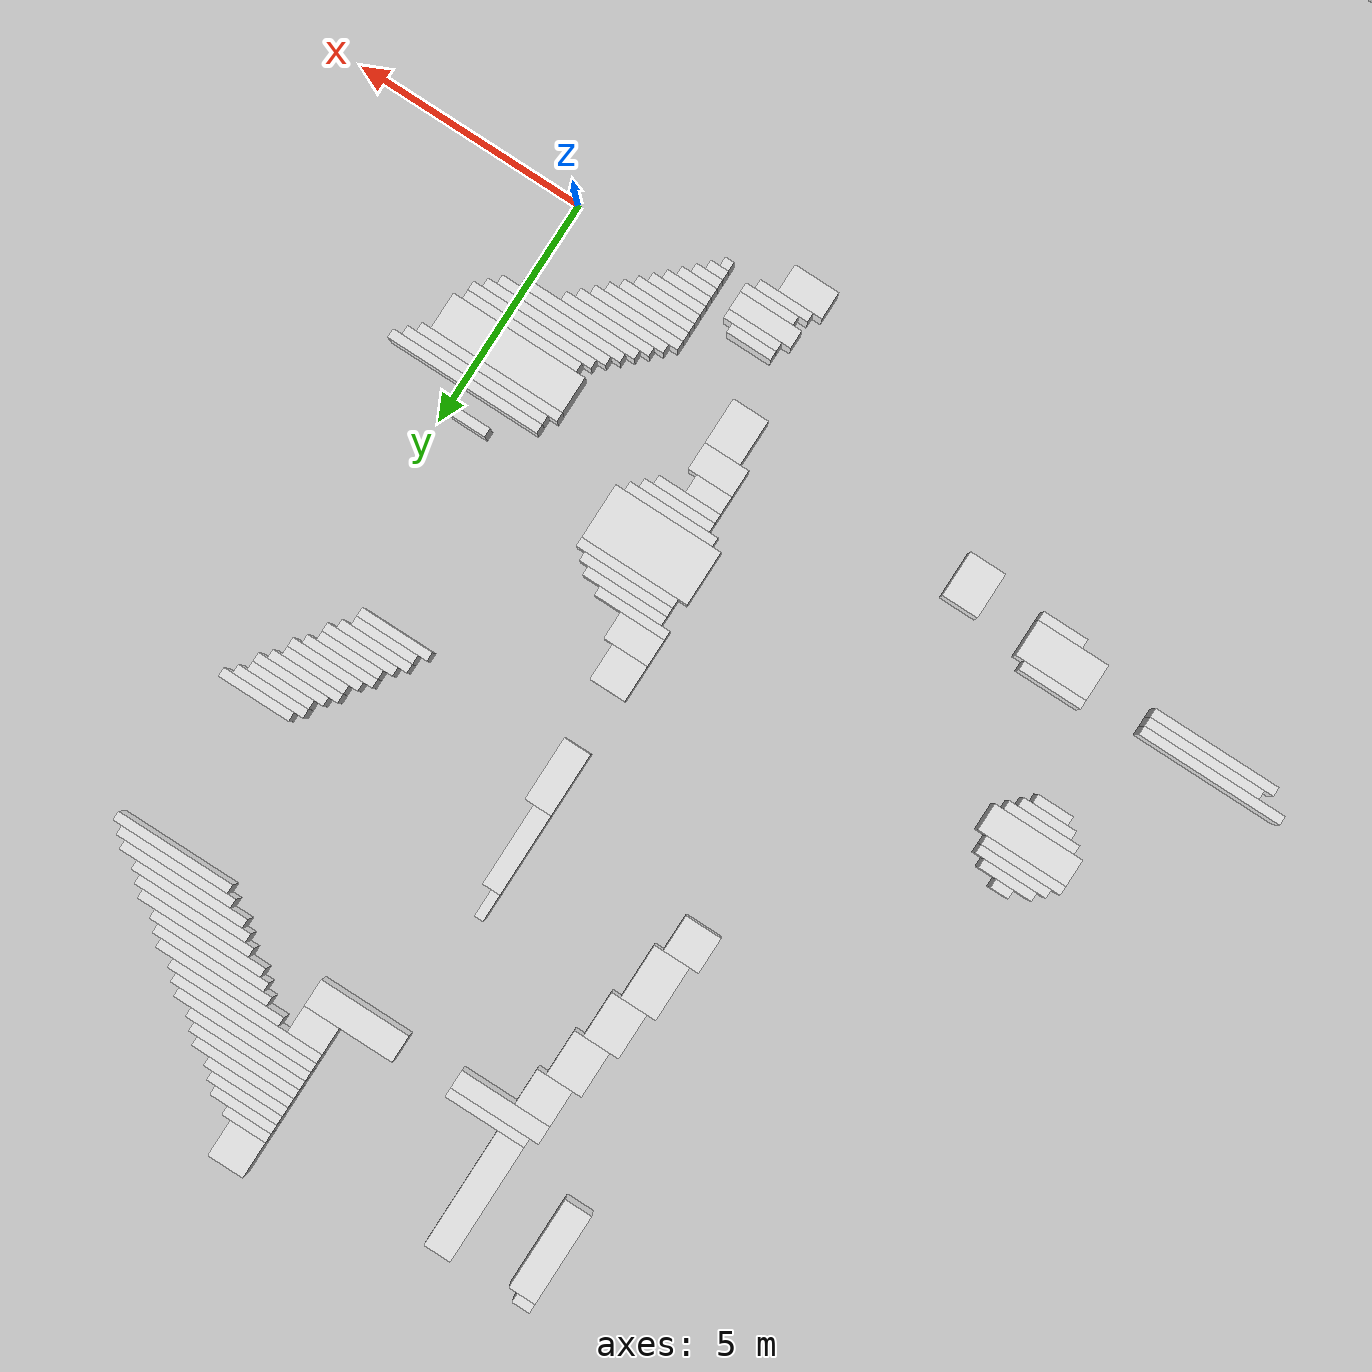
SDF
<sdf version="1.7">
 <world name="default">
  <model name="ground_plane">
   <static>1</static>
   <link name="link">
    <collision name="collision">
     <geometry><plane><normal>0 0 1</normal><size>120 120</size></plane></geometry>
    </collision>
    <visual name="visual">
     <geometry><plane><normal>0 0 1</normal><size>120 120</size></plane></geometry>
     <material>
      <script><uri>file://media/materials/scripts/gazebo.material</uri><name>Gazebo/Grey</name></script>
     </material>
    </visual>
   </link>
  </model>
  <model name="random_complex_01_model">
   <static>1</static>
   <link name="obs_1026">
    <pose>-4.4000 18.8000 0.8000 0 0 0</pose>
    <collision name="obs_1026_col"><geometry><box><size>0.8000 0.8000 1.6000</size></box></geometry></collision>
    <visual name="obs_1026_vis">
     <geometry><box><size>0.8000 0.8000 1.6000</size></box></geometry>
     <material>
      <script><uri>file://media/materials/scripts/gazebo.material</uri><name>Gazebo/White</name></script>
     </material>
    </visual>
   </link>
   <link name="obs_1040">
    <pose>-10.6000 18.3000 0.8000 0 0 0</pose>
    <collision name="obs_1040_col"><geometry><box><size>0.4000 0.2000 1.6000</size></box></geometry></collision>
    <visual name="obs_1040_vis">
     <geometry><box><size>0.4000 0.2000 1.6000</size></box></geometry>
     <material>
      <script><uri>file://media/materials/scripts/gazebo.material</uri><name>Gazebo/White</name></script>
     </material>
    </visual>
   </link>
   <link name="obs_1041">
    <pose>-4.3000 18.3000 0.8000 0 0 0</pose>
    <collision name="obs_1041_col"><geometry><box><size>1.0000 0.2000 1.6000</size></box></geometry></collision>
    <visual name="obs_1041_vis">
     <geometry><box><size>1.0000 0.2000 1.6000</size></box></geometry>
     <material>
      <script><uri>file://media/materials/scripts/gazebo.material</uri><name>Gazebo/White</name></script>
     </material>
    </visual>
   </link>
   <link name="obs_1050">
    <pose>-4.1000 18.1000 0.8000 0 0 0</pose>
    <collision name="obs_1050_col"><geometry><box><size>1.4000 0.2000 1.6000</size></box></geometry></collision>
    <visual name="obs_1050_vis">
     <geometry><box><size>1.4000 0.2000 1.6000</size></box></geometry>
     <material>
      <script><uri>file://media/materials/scripts/gazebo.material</uri><name>Gazebo/White</name></script>
     </material>
    </visual>
   </link>
   <link name="obs_1063">
    <pose>-4.0000 17.9000 0.8000 0 0 0</pose>
    <collision name="obs_1063_col"><geometry><box><size>1.6000 0.2000 1.6000</size></box></geometry></collision>
    <visual name="obs_1063_vis">
     <geometry><box><size>1.6000 0.2000 1.6000</size></box></geometry>
     <material>
      <script><uri>file://media/materials/scripts/gazebo.material</uri><name>Gazebo/White</name></script>
     </material>
    </visual>
   </link>
   <link name="obs_1069">
    <pose>-3.9000 17.7000 0.8000 0 0 0</pose>
    <collision name="obs_1069_col"><geometry><box><size>1.8000 0.2000 1.6000</size></box></geometry></collision>
    <visual name="obs_1069_vis">
     <geometry><box><size>1.8000 0.2000 1.6000</size></box></geometry>
     <material>
      <script><uri>file://media/materials/scripts/gazebo.material</uri><name>Gazebo/White</name></script>
     </material>
    </visual>
   </link>
   <link name="obs_1077">
    <pose>-3.7000 17.5000 0.8000 0 0 0</pose>
    <collision name="obs_1077_col"><geometry><box><size>2.2000 0.2000 1.6000</size></box></geometry></collision>
    <visual name="obs_1077_vis">
     <geometry><box><size>2.2000 0.2000 1.6000</size></box></geometry>
     <material>
      <script><uri>file://media/materials/scripts/gazebo.material</uri><name>Gazebo/White</name></script>
     </material>
    </visual>
   </link>
   <link name="obs_1084">
    <pose>-3.6000 17.3000 0.8000 0 0 0</pose>
    <collision name="obs_1084_col"><geometry><box><size>2.4000 0.2000 1.6000</size></box></geometry></collision>
    <visual name="obs_1084_vis">
     <geometry><box><size>2.4000 0.2000 1.6000</size></box></geometry>
     <material>
      <script><uri>file://media/materials/scripts/gazebo.material</uri><name>Gazebo/White</name></script>
     </material>
    </visual>
   </link>
   <link name="obs_1091">
    <pose>-3.5000 17.1000 0.8000 0 0 0</pose>
    <collision name="obs_1091_col"><geometry><box><size>2.6000 0.2000 1.6000</size></box></geometry></collision>
    <visual name="obs_1091_vis">
     <geometry><box><size>2.6000 0.2000 1.6000</size></box></geometry>
     <material>
      <script><uri>file://media/materials/scripts/gazebo.material</uri><name>Gazebo/White</name></script>
     </material>
    </visual>
   </link>
   <link name="obs_1099">
    <pose>-3.3000 16.9000 0.8000 0 0 0</pose>
    <collision name="obs_1099_col"><geometry><box><size>3.0000 0.2000 1.6000</size></box></geometry></collision>
    <visual name="obs_1099_vis">
     <geometry><box><size>3.0000 0.2000 1.6000</size></box></geometry>
     <material>
      <script><uri>file://media/materials/scripts/gazebo.material</uri><name>Gazebo/White</name></script>
     </material>
    </visual>
   </link>
   <link name="obs_1109">
    <pose>-3.2000 16.7000 0.8000 0 0 0</pose>
    <collision name="obs_1109_col"><geometry><box><size>3.2000 0.2000 1.6000</size></box></geometry></collision>
    <visual name="obs_1109_vis">
     <geometry><box><size>3.2000 0.2000 1.6000</size></box></geometry>
     <material>
      <script><uri>file://media/materials/scripts/gazebo.material</uri><name>Gazebo/White</name></script>
     </material>
    </visual>
   </link>
   <link name="obs_1116">
    <pose>-3.1000 16.5000 0.8000 0 0 0</pose>
    <collision name="obs_1116_col"><geometry><box><size>3.4000 0.2000 1.6000</size></box></geometry></collision>
    <visual name="obs_1116_vis">
     <geometry><box><size>3.4000 0.2000 1.6000</size></box></geometry>
     <material>
      <script><uri>file://media/materials/scripts/gazebo.material</uri><name>Gazebo/White</name></script>
     </material>
    </visual>
   </link>
   <link name="obs_1122">
    <pose>-10.5000 17.2000 0.8000 0 0 0</pose>
    <collision name="obs_1122_col"><geometry><box><size>0.6000 2.0000 1.6000</size></box></geometry></collision>
    <visual name="obs_1122_vis">
     <geometry><box><size>0.6000 2.0000 1.6000</size></box></geometry>
     <material>
      <script><uri>file://media/materials/scripts/gazebo.material</uri><name>Gazebo/White</name></script>
     </material>
    </visual>
   </link>
   <link name="obs_1124">
    <pose>-2.4000 16.3000 0.8000 0 0 0</pose>
    <collision name="obs_1124_col"><geometry><box><size>2.8000 0.2000 1.6000</size></box></geometry></collision>
    <visual name="obs_1124_vis">
     <geometry><box><size>2.8000 0.2000 1.6000</size></box></geometry>
     <material>
      <script><uri>file://media/materials/scripts/gazebo.material</uri><name>Gazebo/White</name></script>
     </material>
    </visual>
   </link>
   <link name="obs_1134">
    <pose>-2.1000 16.1000 0.8000 0 0 0</pose>
    <collision name="obs_1134_col"><geometry><box><size>2.6000 0.2000 1.6000</size></box></geometry></collision>
    <visual name="obs_1134_vis">
     <geometry><box><size>2.6000 0.2000 1.6000</size></box></geometry>
     <material>
      <script><uri>file://media/materials/scripts/gazebo.material</uri><name>Gazebo/White</name></script>
     </material>
    </visual>
   </link>
   <link name="obs_1140">
    <pose>-8.7000 17.1000 0.8000 0 0 0</pose>
    <collision name="obs_1140_col"><geometry><box><size>0.6000 2.6000 1.6000</size></box></geometry></collision>
    <visual name="obs_1140_vis">
     <geometry><box><size>0.6000 2.6000 1.6000</size></box></geometry>
     <material>
      <script><uri>file://media/materials/scripts/gazebo.material</uri><name>Gazebo/White</name></script>
     </material>
    </visual>
   </link>
   <link name="obs_1141">
    <pose>-4.4000 16.1000 0.8000 0 0 0</pose>
    <collision name="obs_1141_col"><geometry><box><size>0.8000 0.6000 1.6000</size></box></geometry></collision>
    <visual name="obs_1141_vis">
     <geometry><box><size>0.8000 0.6000 1.6000</size></box></geometry>
     <material>
      <script><uri>file://media/materials/scripts/gazebo.material</uri><name>Gazebo/White</name></script>
     </material>
    </visual>
   </link>
   <link name="obs_1144">
    <pose>-1.9000 15.9000 0.8000 0 0 0</pose>
    <collision name="obs_1144_col"><geometry><box><size>2.6000 0.2000 1.6000</size></box></geometry></collision>
    <visual name="obs_1144_vis">
     <geometry><box><size>2.6000 0.2000 1.6000</size></box></geometry>
     <material>
      <script><uri>file://media/materials/scripts/gazebo.material</uri><name>Gazebo/White</name></script>
     </material>
    </visual>
   </link>
   <link name="obs_1153">
    <pose>-8.1000 15.7000 0.8000 0 0 0</pose>
    <collision name="obs_1153_col"><geometry><box><size>1.8000 0.2000 1.6000</size></box></geometry></collision>
    <visual name="obs_1153_vis">
     <geometry><box><size>1.8000 0.2000 1.6000</size></box></geometry>
     <material>
      <script><uri>file://media/materials/scripts/gazebo.material</uri><name>Gazebo/White</name></script>
     </material>
    </visual>
   </link>
   <link name="obs_1154">
    <pose>-1.6000 15.7000 0.8000 0 0 0</pose>
    <collision name="obs_1154_col"><geometry><box><size>2.8000 0.2000 1.6000</size></box></geometry></collision>
    <visual name="obs_1154_vis">
     <geometry><box><size>2.8000 0.2000 1.6000</size></box></geometry>
     <material>
      <script><uri>file://media/materials/scripts/gazebo.material</uri><name>Gazebo/White</name></script>
     </material>
    </visual>
   </link>
   <link name="obs_1161">
    <pose>-1.3000 15.5000 0.8000 0 0 0</pose>
    <collision name="obs_1161_col"><geometry><box><size>2.6000 0.2000 1.6000</size></box></geometry></collision>
    <visual name="obs_1161_vis">
     <geometry><box><size>2.6000 0.2000 1.6000</size></box></geometry>
     <material>
      <script><uri>file://media/materials/scripts/gazebo.material</uri><name>Gazebo/White</name></script>
     </material>
    </visual>
   </link>
   <link name="obs_1167">
    <pose>-5.0000 15.5000 0.8000 0 0 0</pose>
    <collision name="obs_1167_col"><geometry><box><size>2.0000 0.6000 1.6000</size></box></geometry></collision>
    <visual name="obs_1167_vis">
     <geometry><box><size>2.0000 0.6000 1.6000</size></box></geometry>
     <material>
      <script><uri>file://media/materials/scripts/gazebo.material</uri><name>Gazebo/White</name></script>
     </material>
    </visual>
   </link>
   <link name="obs_1169">
    <pose>-8.2000 15.4000 0.8000 0 0 0</pose>
    <collision name="obs_1169_col"><geometry><box><size>2.0000 0.4000 1.6000</size></box></geometry></collision>
    <visual name="obs_1169_vis">
     <geometry><box><size>2.0000 0.4000 1.6000</size></box></geometry>
     <material>
      <script><uri>file://media/materials/scripts/gazebo.material</uri><name>Gazebo/White</name></script>
     </material>
    </visual>
   </link>
   <link name="obs_1172">
    <pose>-1.1000 15.3000 0.8000 0 0 0</pose>
    <collision name="obs_1172_col"><geometry><box><size>2.6000 0.2000 1.6000</size></box></geometry></collision>
    <visual name="obs_1172_vis">
     <geometry><box><size>2.6000 0.2000 1.6000</size></box></geometry>
     <material>
      <script><uri>file://media/materials/scripts/gazebo.material</uri><name>Gazebo/White</name></script>
     </material>
    </visual>
   </link>
   <link name="obs_1179">
    <pose>-0.8000 15.1000 0.8000 0 0 0</pose>
    <collision name="obs_1179_col"><geometry><box><size>2.8000 0.2000 1.6000</size></box></geometry></collision>
    <visual name="obs_1179_vis">
     <geometry><box><size>2.8000 0.2000 1.6000</size></box></geometry>
     <material>
      <script><uri>file://media/materials/scripts/gazebo.material</uri><name>Gazebo/White</name></script>
     </material>
    </visual>
   </link>
   <link name="obs_1187">
    <pose>-0.5000 14.9000 0.8000 0 0 0</pose>
    <collision name="obs_1187_col"><geometry><box><size>2.6000 0.2000 1.6000</size></box></geometry></collision>
    <visual name="obs_1187_vis">
     <geometry><box><size>2.6000 0.2000 1.6000</size></box></geometry>
     <material>
      <script><uri>file://media/materials/scripts/gazebo.material</uri><name>Gazebo/White</name></script>
     </material>
    </visual>
   </link>
   <link name="obs_1194">
    <pose>-0.3000 14.7000 0.8000 0 0 0</pose>
    <collision name="obs_1194_col"><geometry><box><size>2.6000 0.2000 1.6000</size></box></geometry></collision>
    <visual name="obs_1194_vis">
     <geometry><box><size>2.6000 0.2000 1.6000</size></box></geometry>
     <material>
      <script><uri>file://media/materials/scripts/gazebo.material</uri><name>Gazebo/White</name></script>
     </material>
    </visual>
   </link>
   <link name="obs_1198">
    <pose>-8.8000 14.8000 0.8000 0 0 0</pose>
    <collision name="obs_1198_col"><geometry><box><size>0.8000 0.8000 1.6000</size></box></geometry></collision>
    <visual name="obs_1198_vis">
     <geometry><box><size>0.8000 0.8000 1.6000</size></box></geometry>
     <material>
      <script><uri>file://media/materials/scripts/gazebo.material</uri><name>Gazebo/White</name></script>
     </material>
    </visual>
   </link>
   <link name="obs_1234">
    <pose>-9.0000 13.9000 0.8000 0 0 0</pose>
    <collision name="obs_1234_col"><geometry><box><size>0.8000 1.0000 1.6000</size></box></geometry></collision>
    <visual name="obs_1234_vis">
     <geometry><box><size>0.8000 1.0000 1.6000</size></box></geometry>
     <material>
      <script><uri>file://media/materials/scripts/gazebo.material</uri><name>Gazebo/White</name></script>
     </material>
    </visual>
   </link>
   <link name="obs_1279">
    <pose>-9.2000 12.9000 0.8000 0 0 0</pose>
    <collision name="obs_1279_col"><geometry><box><size>0.8000 1.0000 1.6000</size></box></geometry></collision>
    <visual name="obs_1279_vis">
     <geometry><box><size>0.8000 1.0000 1.6000</size></box></geometry>
     <material>
      <script><uri>file://media/materials/scripts/gazebo.material</uri><name>Gazebo/White</name></script>
     </material>
    </visual>
   </link>
   <link name="obs_1298">
    <pose>-5.9000 12.3000 0.8000 0 0 0</pose>
    <collision name="obs_1298_col"><geometry><box><size>0.2000 0.6000 1.6000</size></box></geometry></collision>
    <visual name="obs_1298_vis">
     <geometry><box><size>0.2000 0.6000 1.6000</size></box></geometry>
     <material>
      <script><uri>file://media/materials/scripts/gazebo.material</uri><name>Gazebo/White</name></script>
     </material>
    </visual>
   </link>
   <link name="obs_1327">
    <pose>-9.4000 11.8000 0.8000 0 0 0</pose>
    <collision name="obs_1327_col"><geometry><box><size>0.8000 1.2000 1.6000</size></box></geometry></collision>
    <visual name="obs_1327_vis">
     <geometry><box><size>0.8000 1.2000 1.6000</size></box></geometry>
     <material>
      <script><uri>file://media/materials/scripts/gazebo.material</uri><name>Gazebo/White</name></script>
     </material>
    </visual>
   </link>
   <link name="obs_1328">
    <pose>0.0000 11.3000 0.8000 0 0 0</pose>
    <collision name="obs_1328_col"><geometry><box><size>1.6000 0.2000 1.6000</size></box></geometry></collision>
    <visual name="obs_1328_vis">
     <geometry><box><size>1.6000 0.2000 1.6000</size></box></geometry>
     <material>
      <script><uri>file://media/materials/scripts/gazebo.material</uri><name>Gazebo/White</name></script>
     </material>
    </visual>
   </link>
   <link name="obs_1336">
    <pose>-0.2000 11.1000 0.8000 0 0 0</pose>
    <collision name="obs_1336_col"><geometry><box><size>1.6000 0.2000 1.6000</size></box></geometry></collision>
    <visual name="obs_1336_vis">
     <geometry><box><size>1.6000 0.2000 1.6000</size></box></geometry>
     <material>
      <script><uri>file://media/materials/scripts/gazebo.material</uri><name>Gazebo/White</name></script>
     </material>
    </visual>
   </link>
   <link name="obs_1342">
    <pose>-0.3000 10.9000 0.8000 0 0 0</pose>
    <collision name="obs_1342_col"><geometry><box><size>1.4000 0.2000 1.6000</size></box></geometry></collision>
    <visual name="obs_1342_vis">
     <geometry><box><size>1.4000 0.2000 1.6000</size></box></geometry>
     <material>
      <script><uri>file://media/materials/scripts/gazebo.material</uri><name>Gazebo/White</name></script>
     </material>
    </visual>
   </link>
   <link name="obs_1348">
    <pose>-0.4000 10.7000 0.8000 0 0 0</pose>
    <collision name="obs_1348_col"><geometry><box><size>1.6000 0.2000 1.6000</size></box></geometry></collision>
    <visual name="obs_1348_vis">
     <geometry><box><size>1.6000 0.2000 1.6000</size></box></geometry>
     <material>
      <script><uri>file://media/materials/scripts/gazebo.material</uri><name>Gazebo/White</name></script>
     </material>
    </visual>
   </link>
   <link name="obs_1351">
    <pose>-9.6000 10.8000 0.8000 0 0 0</pose>
    <collision name="obs_1351_col"><geometry><box><size>0.8000 0.8000 1.6000</size></box></geometry></collision>
    <visual name="obs_1351_vis">
     <geometry><box><size>0.8000 0.8000 1.6000</size></box></geometry>
     <material>
      <script><uri>file://media/materials/scripts/gazebo.material</uri><name>Gazebo/White</name></script>
     </material>
    </visual>
   </link>
   <link name="obs_1353">
    <pose>-0.6000 10.5000 0.8000 0 0 0</pose>
    <collision name="obs_1353_col"><geometry><box><size>1.6000 0.2000 1.6000</size></box></geometry></collision>
    <visual name="obs_1353_vis">
     <geometry><box><size>1.6000 0.2000 1.6000</size></box></geometry>
     <material>
      <script><uri>file://media/materials/scripts/gazebo.material</uri><name>Gazebo/White</name></script>
     </material>
    </visual>
   </link>
   <link name="obs_1355">
    <pose>-5.8000 11.1000 0.8000 0 0 0</pose>
    <collision name="obs_1355_col"><geometry><box><size>0.4000 1.8000 1.6000</size></box></geometry></collision>
    <visual name="obs_1355_vis">
     <geometry><box><size>0.4000 1.8000 1.6000</size></box></geometry>
     <material>
      <script><uri>file://media/materials/scripts/gazebo.material</uri><name>Gazebo/White</name></script>
     </material>
    </visual>
   </link>
   <link name="obs_1360">
    <pose>-0.7000 10.3000 0.8000 0 0 0</pose>
    <collision name="obs_1360_col"><geometry><box><size>1.4000 0.2000 1.6000</size></box></geometry></collision>
    <visual name="obs_1360_vis">
     <geometry><box><size>1.4000 0.2000 1.6000</size></box></geometry>
     <material>
      <script><uri>file://media/materials/scripts/gazebo.material</uri><name>Gazebo/White</name></script>
     </material>
    </visual>
   </link>
   <link name="obs_1367">
    <pose>-0.8000 10.1000 0.8000 0 0 0</pose>
    <collision name="obs_1367_col"><geometry><box><size>1.6000 0.2000 1.6000</size></box></geometry></collision>
    <visual name="obs_1367_vis">
     <geometry><box><size>1.6000 0.2000 1.6000</size></box></geometry>
     <material>
      <script><uri>file://media/materials/scripts/gazebo.material</uri><name>Gazebo/White</name></script>
     </material>
    </visual>
   </link>
   <link name="obs_1375">
    <pose>-1.0000 9.9000 0.8000 0 0 0</pose>
    <collision name="obs_1375_col"><geometry><box><size>1.6000 0.2000 1.6000</size></box></geometry></collision>
    <visual name="obs_1375_vis">
     <geometry><box><size>1.6000 0.2000 1.6000</size></box></geometry>
     <material>
      <script><uri>file://media/materials/scripts/gazebo.material</uri><name>Gazebo/White</name></script>
     </material>
    </visual>
   </link>
   <link name="obs_1382">
    <pose>-1.1000 9.7000 0.8000 0 0 0</pose>
    <collision name="obs_1382_col"><geometry><box><size>1.4000 0.2000 1.6000</size></box></geometry></collision>
    <visual name="obs_1382_vis">
     <geometry><box><size>1.4000 0.2000 1.6000</size></box></geometry>
     <material>
      <script><uri>file://media/materials/scripts/gazebo.material</uri><name>Gazebo/White</name></script>
     </material>
    </visual>
   </link>
   <link name="obs_1392">
    <pose>-1.2000 9.5000 0.8000 0 0 0</pose>
    <collision name="obs_1392_col"><geometry><box><size>1.6000 0.2000 1.6000</size></box></geometry></collision>
    <visual name="obs_1392_vis">
     <geometry><box><size>1.6000 0.2000 1.6000</size></box></geometry>
     <material>
      <script><uri>file://media/materials/scripts/gazebo.material</uri><name>Gazebo/White</name></script>
     </material>
    </visual>
   </link>
   <link name="obs_1397">
    <pose>-1.4000 9.3000 0.8000 0 0 0</pose>
    <collision name="obs_1397_col"><geometry><box><size>1.6000 0.2000 1.6000</size></box></geometry></collision>
    <visual name="obs_1397_vis">
     <geometry><box><size>1.6000 0.2000 1.6000</size></box></geometry>
     <material>
      <script><uri>file://media/materials/scripts/gazebo.material</uri><name>Gazebo/White</name></script>
     </material>
    </visual>
   </link>
   <link name="obs_1405">
    <pose>-1.5000 9.1000 0.8000 0 0 0</pose>
    <collision name="obs_1405_col"><geometry><box><size>1.4000 0.2000 1.6000</size></box></geometry></collision>
    <visual name="obs_1405_vis">
     <geometry><box><size>1.4000 0.2000 1.6000</size></box></geometry>
     <material>
      <script><uri>file://media/materials/scripts/gazebo.material</uri><name>Gazebo/White</name></script>
     </material>
    </visual>
   </link>
   <link name="obs_1408">
    <pose>-5.7000 9.5000 0.8000 0 0 0</pose>
    <collision name="obs_1408_col"><geometry><box><size>0.6000 1.4000 1.6000</size></box></geometry></collision>
    <visual name="obs_1408_vis">
     <geometry><box><size>0.6000 1.4000 1.6000</size></box></geometry>
     <material>
      <script><uri>file://media/materials/scripts/gazebo.material</uri><name>Gazebo/White</name></script>
     </material>
    </visual>
   </link>
   <link name="obs_1416">
    <pose>-1.6000 8.9000 0.8000 0 0 0</pose>
    <collision name="obs_1416_col"><geometry><box><size>1.6000 0.2000 1.6000</size></box></geometry></collision>
    <visual name="obs_1416_vis">
     <geometry><box><size>1.6000 0.2000 1.6000</size></box></geometry>
     <material>
      <script><uri>file://media/materials/scripts/gazebo.material</uri><name>Gazebo/White</name></script>
     </material>
    </visual>
   </link>
   <link name="obs_1491">
    <pose>-5.6000 7.2000 0.8000 0 0 0</pose>
    <collision name="obs_1491_col"><geometry><box><size>0.8000 0.8000 1.6000</size></box></geometry></collision>
    <visual name="obs_1491_vis">
     <geometry><box><size>0.8000 0.8000 1.6000</size></box></geometry>
     <material>
      <script><uri>file://media/materials/scripts/gazebo.material</uri><name>Gazebo/White</name></script>
     </material>
    </visual>
   </link>
   <link name="obs_1502">
    <pose>-14.0000 6.7000 0.8000 0 0 0</pose>
    <collision name="obs_1502_col"><geometry><box><size>0.4000 0.2000 1.6000</size></box></geometry></collision>
    <visual name="obs_1502_vis">
     <geometry><box><size>0.4000 0.2000 1.6000</size></box></geometry>
     <material>
      <script><uri>file://media/materials/scripts/gazebo.material</uri><name>Gazebo/White</name></script>
     </material>
    </visual>
   </link>
   <link name="obs_1514">
    <pose>-14.0000 6.5000 0.8000 0 0 0</pose>
    <collision name="obs_1514_col"><geometry><box><size>1.2000 0.2000 1.6000</size></box></geometry></collision>
    <visual name="obs_1514_vis">
     <geometry><box><size>1.2000 0.2000 1.6000</size></box></geometry>
     <material>
      <script><uri>file://media/materials/scripts/gazebo.material</uri><name>Gazebo/White</name></script>
     </material>
    </visual>
   </link>
   <link name="obs_1518">
    <pose>-5.5000 6.5000 0.8000 0 0 0</pose>
    <collision name="obs_1518_col"><geometry><box><size>1.0000 0.6000 1.6000</size></box></geometry></collision>
    <visual name="obs_1518_vis">
     <geometry><box><size>1.0000 0.6000 1.6000</size></box></geometry>
     <material>
      <script><uri>file://media/materials/scripts/gazebo.material</uri><name>Gazebo/White</name></script>
     </material>
    </visual>
   </link>
   <link name="obs_1522">
    <pose>-14.0000 6.3000 0.8000 0 0 0</pose>
    <collision name="obs_1522_col"><geometry><box><size>1.6000 0.2000 1.6000</size></box></geometry></collision>
    <visual name="obs_1522_vis">
     <geometry><box><size>1.6000 0.2000 1.6000</size></box></geometry>
     <material>
      <script><uri>file://media/materials/scripts/gazebo.material</uri><name>Gazebo/White</name></script>
     </material>
    </visual>
   </link>
   <link name="obs_1530">
    <pose>-14.1000 6.1000 0.8000 0 0 0</pose>
    <collision name="obs_1530_col"><geometry><box><size>1.8000 0.2000 1.6000</size></box></geometry></collision>
    <visual name="obs_1530_vis">
     <geometry><box><size>1.8000 0.2000 1.6000</size></box></geometry>
     <material>
      <script><uri>file://media/materials/scripts/gazebo.material</uri><name>Gazebo/White</name></script>
     </material>
    </visual>
   </link>
   <link name="obs_1531">
    <pose>-5.2000 6.1000 0.8000 0 0 0</pose>
    <collision name="obs_1531_col"><geometry><box><size>1.6000 0.2000 1.6000</size></box></geometry></collision>
    <visual name="obs_1531_vis">
     <geometry><box><size>1.6000 0.2000 1.6000</size></box></geometry>
     <material>
      <script><uri>file://media/materials/scripts/gazebo.material</uri><name>Gazebo/White</name></script>
     </material>
    </visual>
   </link>
   <link name="obs_1539">
    <pose>-4.9000 5.9000 0.8000 0 0 0</pose>
    <collision name="obs_1539_col"><geometry><box><size>1.8000 0.2000 1.6000</size></box></geometry></collision>
    <visual name="obs_1539_vis">
     <geometry><box><size>1.8000 0.2000 1.6000</size></box></geometry>
     <material>
      <script><uri>file://media/materials/scripts/gazebo.material</uri><name>Gazebo/White</name></script>
     </material>
    </visual>
   </link>
   <link name="obs_1547">
    <pose>-4.8000 5.7000 0.8000 0 0 0</pose>
    <collision name="obs_1547_col"><geometry><box><size>2.0000 0.2000 1.6000</size></box></geometry></collision>
    <visual name="obs_1547_vis">
     <geometry><box><size>2.0000 0.2000 1.6000</size></box></geometry>
     <material>
      <script><uri>file://media/materials/scripts/gazebo.material</uri><name>Gazebo/White</name></script>
     </material>
    </visual>
   </link>
   <link name="obs_1550">
    <pose>-14.0000 5.7000 0.8000 0 0 0</pose>
    <collision name="obs_1550_col"><geometry><box><size>2.0000 0.6000 1.6000</size></box></geometry></collision>
    <visual name="obs_1550_vis">
     <geometry><box><size>2.0000 0.6000 1.6000</size></box></geometry>
     <material>
      <script><uri>file://media/materials/scripts/gazebo.material</uri><name>Gazebo/White</name></script>
     </material>
    </visual>
   </link>
   <link name="obs_1555">
    <pose>-4.7000 5.5000 0.8000 0 0 0</pose>
    <collision name="obs_1555_col"><geometry><box><size>2.2000 0.2000 1.6000</size></box></geometry></collision>
    <visual name="obs_1555_vis">
     <geometry><box><size>2.2000 0.2000 1.6000</size></box></geometry>
     <material>
      <script><uri>file://media/materials/scripts/gazebo.material</uri><name>Gazebo/White</name></script>
     </material>
    </visual>
   </link>
   <link name="obs_1564">
    <pose>-14.0000 5.3000 0.8000 0 0 0</pose>
    <collision name="obs_1564_col"><geometry><box><size>1.6000 0.2000 1.6000</size></box></geometry></collision>
    <visual name="obs_1564_vis">
     <geometry><box><size>1.6000 0.2000 1.6000</size></box></geometry>
     <material>
      <script><uri>file://media/materials/scripts/gazebo.material</uri><name>Gazebo/White</name></script>
     </material>
    </visual>
   </link>
   <link name="obs_1575">
    <pose>-14.0000 5.1000 0.8000 0 0 0</pose>
    <collision name="obs_1575_col"><geometry><box><size>1.2000 0.2000 1.6000</size></box></geometry></collision>
    <visual name="obs_1575_vis">
     <geometry><box><size>1.2000 0.2000 1.6000</size></box></geometry>
     <material>
      <script><uri>file://media/materials/scripts/gazebo.material</uri><name>Gazebo/White</name></script>
     </material>
    </visual>
   </link>
   <link name="obs_1585">
    <pose>-14.0000 4.9000 0.8000 0 0 0</pose>
    <collision name="obs_1585_col"><geometry><box><size>0.8000 0.2000 1.6000</size></box></geometry></collision>
    <visual name="obs_1585_vis">
     <geometry><box><size>0.8000 0.2000 1.6000</size></box></geometry>
     <material>
      <script><uri>file://media/materials/scripts/gazebo.material</uri><name>Gazebo/White</name></script>
     </material>
    </visual>
   </link>
   <link name="obs_1595">
    <pose>-0.6000 4.7000 0.8000 0 0 0</pose>
    <collision name="obs_1595_col"><geometry><box><size>0.8000 0.2000 1.6000</size></box></geometry></collision>
    <visual name="obs_1595_vis">
     <geometry><box><size>0.8000 0.2000 1.6000</size></box></geometry>
     <material>
      <script><uri>file://media/materials/scripts/gazebo.material</uri><name>Gazebo/White</name></script>
     </material>
    </visual>
   </link>
   <link name="obs_1608">
    <pose>-4.8000 4.8000 0.8000 0 0 0</pose>
    <collision name="obs_1608_col"><geometry><box><size>2.4000 1.2000 1.6000</size></box></geometry></collision>
    <visual name="obs_1608_vis">
     <geometry><box><size>2.4000 1.2000 1.6000</size></box></geometry>
     <material>
      <script><uri>file://media/materials/scripts/gazebo.material</uri><name>Gazebo/White</name></script>
     </material>
    </visual>
   </link>
   <link name="obs_1624">
    <pose>-4.8000 4.1000 0.8000 0 0 0</pose>
    <collision name="obs_1624_col"><geometry><box><size>2.0000 0.2000 1.6000</size></box></geometry></collision>
    <visual name="obs_1624_vis">
     <geometry><box><size>2.0000 0.2000 1.6000</size></box></geometry>
     <material>
      <script><uri>file://media/materials/scripts/gazebo.material</uri><name>Gazebo/White</name></script>
     </material>
    </visual>
   </link>
   <link name="obs_1625">
    <pose>-0.1000 4.1000 0.8000 0 0 0</pose>
    <collision name="obs_1625_col"><geometry><box><size>3.4000 0.2000 1.6000</size></box></geometry></collision>
    <visual name="obs_1625_vis">
     <geometry><box><size>3.4000 0.2000 1.6000</size></box></geometry>
     <material>
      <script><uri>file://media/materials/scripts/gazebo.material</uri><name>Gazebo/White</name></script>
     </material>
    </visual>
   </link>
   <link name="obs_1639">
    <pose>-4.8000 3.9000 0.8000 0 0 0</pose>
    <collision name="obs_1639_col"><geometry><box><size>1.6000 0.2000 1.6000</size></box></geometry></collision>
    <visual name="obs_1639_vis">
     <geometry><box><size>1.6000 0.2000 1.6000</size></box></geometry>
     <material>
      <script><uri>file://media/materials/scripts/gazebo.material</uri><name>Gazebo/White</name></script>
     </material>
    </visual>
   </link>
   <link name="obs_1640">
    <pose>-0.2000 3.9000 0.8000 0 0 0</pose>
    <collision name="obs_1640_col"><geometry><box><size>3.2000 0.2000 1.6000</size></box></geometry></collision>
    <visual name="obs_1640_vis">
     <geometry><box><size>3.2000 0.2000 1.6000</size></box></geometry>
     <material>
      <script><uri>file://media/materials/scripts/gazebo.material</uri><name>Gazebo/White</name></script>
     </material>
    </visual>
   </link>
   <link name="obs_1653">
    <pose>-4.9000 3.7000 0.8000 0 0 0</pose>
    <collision name="obs_1653_col"><geometry><box><size>1.4000 0.2000 1.6000</size></box></geometry></collision>
    <visual name="obs_1653_vis">
     <geometry><box><size>1.4000 0.2000 1.6000</size></box></geometry>
     <material>
      <script><uri>file://media/materials/scripts/gazebo.material</uri><name>Gazebo/White</name></script>
     </material>
    </visual>
   </link>
   <link name="obs_1654">
    <pose>-0.4000 3.7000 0.8000 0 0 0</pose>
    <collision name="obs_1654_col"><geometry><box><size>3.2000 0.2000 1.6000</size></box></geometry></collision>
    <visual name="obs_1654_vis">
     <geometry><box><size>3.2000 0.2000 1.6000</size></box></geometry>
     <material>
      <script><uri>file://media/materials/scripts/gazebo.material</uri><name>Gazebo/White</name></script>
     </material>
    </visual>
   </link>
   <link name="obs_1677">
    <pose>-5.2000 3.4000 0.8000 0 0 0</pose>
    <collision name="obs_1677_col"><geometry><box><size>0.8000 0.4000 1.6000</size></box></geometry></collision>
    <visual name="obs_1677_vis">
     <geometry><box><size>0.8000 0.4000 1.6000</size></box></geometry>
     <material>
      <script><uri>file://media/materials/scripts/gazebo.material</uri><name>Gazebo/White</name></script>
     </material>
    </visual>
   </link>
   <link name="obs_1699">
    <pose>-0.5000 3.2000 0.8000 0 0 0</pose>
    <collision name="obs_1699_col"><geometry><box><size>3.0000 0.8000 1.6000</size></box></geometry></collision>
    <visual name="obs_1699_vis">
     <geometry><box><size>3.0000 0.8000 1.6000</size></box></geometry>
     <material>
      <script><uri>file://media/materials/scripts/gazebo.material</uri><name>Gazebo/White</name></script>
     </material>
    </visual>
   </link>
   <link name="obs_1707">
    <pose>-12.7000 2.9000 0.8000 0 0 0</pose>
    <collision name="obs_1707_col"><geometry><box><size>1.4000 0.2000 1.6000</size></box></geometry></collision>
    <visual name="obs_1707_vis">
     <geometry><box><size>1.4000 0.2000 1.6000</size></box></geometry>
     <material>
      <script><uri>file://media/materials/scripts/gazebo.material</uri><name>Gazebo/White</name></script>
     </material>
    </visual>
   </link>
   <link name="obs_1713">
    <pose>-5.1000 2.9000 0.8000 0 0 0</pose>
    <collision name="obs_1713_col"><geometry><box><size>1.0000 0.6000 1.6000</size></box></geometry></collision>
    <visual name="obs_1713_vis">
     <geometry><box><size>1.0000 0.6000 1.6000</size></box></geometry>
     <material>
      <script><uri>file://media/materials/scripts/gazebo.material</uri><name>Gazebo/White</name></script>
     </material>
    </visual>
   </link>
   <link name="obs_1717">
    <pose>-16.2000 2.7000 0.8000 0 0 0</pose>
    <collision name="obs_1717_col"><geometry><box><size>3.2000 0.2000 1.6000</size></box></geometry></collision>
    <visual name="obs_1717_vis">
     <geometry><box><size>3.2000 0.2000 1.6000</size></box></geometry>
     <material>
      <script><uri>file://media/materials/scripts/gazebo.material</uri><name>Gazebo/White</name></script>
     </material>
    </visual>
   </link>
   <link name="obs_1718">
    <pose>-0.5000 2.7000 0.8000 0 0 0</pose>
    <collision name="obs_1718_col"><geometry><box><size>2.6000 0.2000 1.6000</size></box></geometry></collision>
    <visual name="obs_1718_vis">
     <geometry><box><size>2.6000 0.2000 1.6000</size></box></geometry>
     <material>
      <script><uri>file://media/materials/scripts/gazebo.material</uri><name>Gazebo/White</name></script>
     </material>
    </visual>
   </link>
   <link name="obs_1726">
    <pose>-15.9000 2.5000 0.8000 0 0 0</pose>
    <collision name="obs_1726_col"><geometry><box><size>2.6000 0.2000 1.6000</size></box></geometry></collision>
    <visual name="obs_1726_vis">
     <geometry><box><size>2.6000 0.2000 1.6000</size></box></geometry>
     <material>
      <script><uri>file://media/materials/scripts/gazebo.material</uri><name>Gazebo/White</name></script>
     </material>
    </visual>
   </link>
   <link name="obs_1727">
    <pose>-0.6000 2.5000 0.8000 0 0 0</pose>
    <collision name="obs_1727_col"><geometry><box><size>2.8000 0.2000 1.6000</size></box></geometry></collision>
    <visual name="obs_1727_vis">
     <geometry><box><size>2.8000 0.2000 1.6000</size></box></geometry>
     <material>
      <script><uri>file://media/materials/scripts/gazebo.material</uri><name>Gazebo/White</name></script>
     </material>
    </visual>
   </link>
   <link name="obs_1734">
    <pose>-16.0000 2.3000 0.8000 0 0 0</pose>
    <collision name="obs_1734_col"><geometry><box><size>2.8000 0.2000 1.6000</size></box></geometry></collision>
    <visual name="obs_1734_vis">
     <geometry><box><size>2.8000 0.2000 1.6000</size></box></geometry>
     <material>
      <script><uri>file://media/materials/scripts/gazebo.material</uri><name>Gazebo/White</name></script>
     </material>
    </visual>
   </link>
   <link name="obs_1735">
    <pose>-0.8000 2.3000 0.8000 0 0 0</pose>
    <collision name="obs_1735_col"><geometry><box><size>2.8000 0.2000 1.6000</size></box></geometry></collision>
    <visual name="obs_1735_vis">
     <geometry><box><size>2.8000 0.2000 1.6000</size></box></geometry>
     <material>
      <script><uri>file://media/materials/scripts/gazebo.material</uri><name>Gazebo/White</name></script>
     </material>
    </visual>
   </link>
   <link name="obs_1742">
    <pose>-12.6000 2.4000 0.8000 0 0 0</pose>
    <collision name="obs_1742_col"><geometry><box><size>1.6000 0.8000 1.6000</size></box></geometry></collision>
    <visual name="obs_1742_vis">
     <geometry><box><size>1.6000 0.8000 1.6000</size></box></geometry>
     <material>
      <script><uri>file://media/materials/scripts/gazebo.material</uri><name>Gazebo/White</name></script>
     </material>
    </visual>
   </link>
   <link name="obs_1747">
    <pose>-1.0000 2.1000 0.8000 0 0 0</pose>
    <collision name="obs_1747_col"><geometry><box><size>2.8000 0.2000 1.6000</size></box></geometry></collision>
    <visual name="obs_1747_vis">
     <geometry><box><size>2.8000 0.2000 1.6000</size></box></geometry>
     <material>
      <script><uri>file://media/materials/scripts/gazebo.material</uri><name>Gazebo/White</name></script>
     </material>
    </visual>
   </link>
   <link name="obs_1758">
    <pose>-12.3000 1.9000 0.8000 0 0 0</pose>
    <collision name="obs_1758_col"><geometry><box><size>1.0000 0.2000 1.6000</size></box></geometry></collision>
    <visual name="obs_1758_vis">
     <geometry><box><size>1.0000 0.2000 1.6000</size></box></geometry>
     <material>
      <script><uri>file://media/materials/scripts/gazebo.material</uri><name>Gazebo/White</name></script>
     </material>
    </visual>
   </link>
   <link name="obs_1759">
    <pose>-1.3000 1.9000 0.8000 0 0 0</pose>
    <collision name="obs_1759_col"><geometry><box><size>2.6000 0.2000 1.6000</size></box></geometry></collision>
    <visual name="obs_1759_vis">
     <geometry><box><size>2.6000 0.2000 1.6000</size></box></geometry>
     <material>
      <script><uri>file://media/materials/scripts/gazebo.material</uri><name>Gazebo/White</name></script>
     </material>
    </visual>
   </link>
   <link name="obs_1762">
    <pose>-10.4000 2.1000 0.8000 0 0 0</pose>
    <collision name="obs_1762_col"><geometry><box><size>0.8000 1.0000 1.6000</size></box></geometry></collision>
    <visual name="obs_1762_vis">
     <geometry><box><size>0.8000 1.0000 1.6000</size></box></geometry>
     <material>
      <script><uri>file://media/materials/scripts/gazebo.material</uri><name>Gazebo/White</name></script>
     </material>
    </visual>
   </link>
   <link name="obs_1763">
    <pose>-5.0000 2.1000 0.8000 0 0 0</pose>
    <collision name="obs_1763_col"><geometry><box><size>0.8000 1.0000 1.6000</size></box></geometry></collision>
    <visual name="obs_1763_vis">
     <geometry><box><size>0.8000 1.0000 1.6000</size></box></geometry>
     <material>
      <script><uri>file://media/materials/scripts/gazebo.material</uri><name>Gazebo/White</name></script>
     </material>
    </visual>
   </link>
   <link name="obs_1767">
    <pose>-1.8000 1.7000 0.8000 0 0 0</pose>
    <collision name="obs_1767_col"><geometry><box><size>2.0000 0.2000 1.6000</size></box></geometry></collision>
    <visual name="obs_1767_vis">
     <geometry><box><size>2.0000 0.2000 1.6000</size></box></geometry>
     <material>
      <script><uri>file://media/materials/scripts/gazebo.material</uri><name>Gazebo/White</name></script>
     </material>
    </visual>
   </link>
   <link name="obs_1778">
    <pose>-2.0000 1.5000 0.8000 0 0 0</pose>
    <collision name="obs_1778_col"><geometry><box><size>2.0000 0.2000 1.6000</size></box></geometry></collision>
    <visual name="obs_1778_vis">
     <geometry><box><size>2.0000 0.2000 1.6000</size></box></geometry>
     <material>
      <script><uri>file://media/materials/scripts/gazebo.material</uri><name>Gazebo/White</name></script>
     </material>
    </visual>
   </link>
   <link name="obs_1787">
    <pose>-2.2000 1.3000 0.8000 0 0 0</pose>
    <collision name="obs_1787_col"><geometry><box><size>2.0000 0.2000 1.6000</size></box></geometry></collision>
    <visual name="obs_1787_vis">
     <geometry><box><size>2.0000 0.2000 1.6000</size></box></geometry>
     <material>
      <script><uri>file://media/materials/scripts/gazebo.material</uri><name>Gazebo/White</name></script>
     </material>
    </visual>
   </link>
   <link name="obs_1796">
    <pose>-2.3000 1.1000 0.8000 0 0 0</pose>
    <collision name="obs_1796_col"><geometry><box><size>1.8000 0.2000 1.6000</size></box></geometry></collision>
    <visual name="obs_1796_vis">
     <geometry><box><size>1.8000 0.2000 1.6000</size></box></geometry>
     <material>
      <script><uri>file://media/materials/scripts/gazebo.material</uri><name>Gazebo/White</name></script>
     </material>
    </visual>
   </link>
   <link name="obs_1806">
    <pose>-2.4000 0.9000 0.8000 0 0 0</pose>
    <collision name="obs_1806_col"><geometry><box><size>1.6000 0.2000 1.6000</size></box></geometry></collision>
    <visual name="obs_1806_vis">
     <geometry><box><size>1.6000 0.2000 1.6000</size></box></geometry>
     <material>
      <script><uri>file://media/materials/scripts/gazebo.material</uri><name>Gazebo/White</name></script>
     </material>
    </visual>
   </link>
   <link name="obs_1817">
    <pose>-2.5000 0.7000 0.8000 0 0 0</pose>
    <collision name="obs_1817_col"><geometry><box><size>1.4000 0.2000 1.6000</size></box></geometry></collision>
    <visual name="obs_1817_vis">
     <geometry><box><size>1.4000 0.2000 1.6000</size></box></geometry>
     <material>
      <script><uri>file://media/materials/scripts/gazebo.material</uri><name>Gazebo/White</name></script>
     </material>
    </visual>
   </link>
   <link name="obs_1823">
    <pose>-4.3000 0.5000 0.8000 0 0 0</pose>
    <collision name="obs_1823_col"><geometry><box><size>1.0000 0.2000 1.6000</size></box></geometry></collision>
    <visual name="obs_1823_vis">
     <geometry><box><size>1.0000 0.2000 1.6000</size></box></geometry>
     <material>
      <script><uri>file://media/materials/scripts/gazebo.material</uri><name>Gazebo/White</name></script>
     </material>
    </visual>
   </link>
   <link name="obs_1824">
    <pose>-2.6000 0.5000 0.8000 0 0 0</pose>
    <collision name="obs_1824_col"><geometry><box><size>1.2000 0.2000 1.6000</size></box></geometry></collision>
    <visual name="obs_1824_vis">
     <geometry><box><size>1.2000 0.2000 1.6000</size></box></geometry>
     <material>
      <script><uri>file://media/materials/scripts/gazebo.material</uri><name>Gazebo/White</name></script>
     </material>
    </visual>
   </link>
   <link name="obs_1832">
    <pose>-4.2000 0.3000 0.8000 0 0 0</pose>
    <collision name="obs_1832_col"><geometry><box><size>1.2000 0.2000 1.6000</size></box></geometry></collision>
    <visual name="obs_1832_vis">
     <geometry><box><size>1.2000 0.2000 1.6000</size></box></geometry>
     <material>
      <script><uri>file://media/materials/scripts/gazebo.material</uri><name>Gazebo/White</name></script>
     </material>
    </visual>
   </link>
   <link name="obs_1833">
    <pose>-2.7000 0.3000 0.8000 0 0 0</pose>
    <collision name="obs_1833_col"><geometry><box><size>1.0000 0.2000 1.6000</size></box></geometry></collision>
    <visual name="obs_1833_vis">
     <geometry><box><size>1.0000 0.2000 1.6000</size></box></geometry>
     <material>
      <script><uri>file://media/materials/scripts/gazebo.material</uri><name>Gazebo/White</name></script>
     </material>
    </visual>
   </link>
   <link name="obs_1842">
    <pose>-2.8000 0.1000 0.8000 0 0 0</pose>
    <collision name="obs_1842_col"><geometry><box><size>0.8000 0.2000 1.6000</size></box></geometry></collision>
    <visual name="obs_1842_vis">
     <geometry><box><size>0.8000 0.2000 1.6000</size></box></geometry>
     <material>
      <script><uri>file://media/materials/scripts/gazebo.material</uri><name>Gazebo/White</name></script>
     </material>
    </visual>
   </link>
   <link name="obs_1847">
    <pose>-4.3000 0.0000 0.8000 0 0 0</pose>
    <collision name="obs_1847_col"><geometry><box><size>1.4000 0.4000 1.6000</size></box></geometry></collision>
    <visual name="obs_1847_vis">
     <geometry><box><size>1.4000 0.4000 1.6000</size></box></geometry>
     <material>
      <script><uri>file://media/materials/scripts/gazebo.material</uri><name>Gazebo/White</name></script>
     </material>
    </visual>
   </link>
   <link name="obs_1851">
    <pose>-2.9000 -0.1000 0.8000 0 0 0</pose>
    <collision name="obs_1851_col"><geometry><box><size>0.6000 0.2000 1.6000</size></box></geometry></collision>
    <visual name="obs_1851_vis">
     <geometry><box><size>0.6000 0.2000 1.6000</size></box></geometry>
     <material>
      <script><uri>file://media/materials/scripts/gazebo.material</uri><name>Gazebo/White</name></script>
     </material>
    </visual>
   </link>
   <link name="obs_1857">
    <pose>-4.2000 -0.3000 0.8000 0 0 0</pose>
    <collision name="obs_1857_col"><geometry><box><size>1.2000 0.2000 1.6000</size></box></geometry></collision>
    <visual name="obs_1857_vis">
     <geometry><box><size>1.2000 0.2000 1.6000</size></box></geometry>
     <material>
      <script><uri>file://media/materials/scripts/gazebo.material</uri><name>Gazebo/White</name></script>
     </material>
    </visual>
   </link>
   <link name="obs_1858">
    <pose>-3.0000 -0.3000 0.8000 0 0 0</pose>
    <collision name="obs_1858_col"><geometry><box><size>0.4000 0.2000 1.6000</size></box></geometry></collision>
    <visual name="obs_1858_vis">
     <geometry><box><size>0.4000 0.2000 1.6000</size></box></geometry>
     <material>
      <script><uri>file://media/materials/scripts/gazebo.material</uri><name>Gazebo/White</name></script>
     </material>
    </visual>
   </link>
   <link name="obs_1864">
    <pose>-4.4000 -0.5000 0.8000 0 0 0</pose>
    <collision name="obs_1864_col"><geometry><box><size>1.2000 0.2000 1.6000</size></box></geometry></collision>
    <visual name="obs_1864_vis">
     <geometry><box><size>1.2000 0.2000 1.6000</size></box></geometry>
     <material>
      <script><uri>file://media/materials/scripts/gazebo.material</uri><name>Gazebo/White</name></script>
     </material>
    </visual>
   </link>
   <link name="obs_1865">
    <pose>-3.1000 -0.5000 0.8000 0 0 0</pose>
    <collision name="obs_1865_col"><geometry><box><size>0.2000 0.2000 1.6000</size></box></geometry></collision>
    <visual name="obs_1865_vis">
     <geometry><box><size>0.2000 0.2000 1.6000</size></box></geometry>
     <material>
      <script><uri>file://media/materials/scripts/gazebo.material</uri><name>Gazebo/White</name></script>
     </material>
    </visual>
   </link>
   <link name="obs_1882">
    <pose>-4.7000 -0.9000 0.8000 0 0 0</pose>
    <collision name="obs_1882_col"><geometry><box><size>1.0000 0.6000 1.6000</size></box></geometry></collision>
    <visual name="obs_1882_vis">
     <geometry><box><size>1.0000 0.6000 1.6000</size></box></geometry>
     <material>
      <script><uri>file://media/materials/scripts/gazebo.material</uri><name>Gazebo/White</name></script>
     </material>
    </visual>
   </link>
  </model>
 </world>
</sdf>
